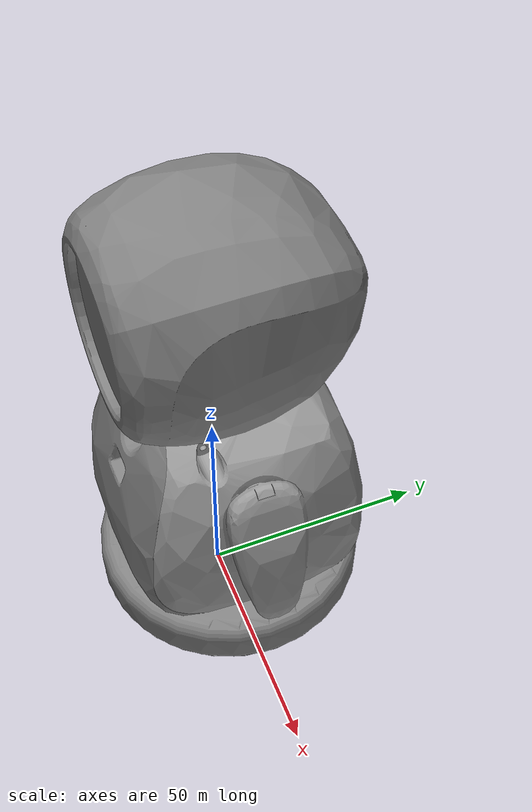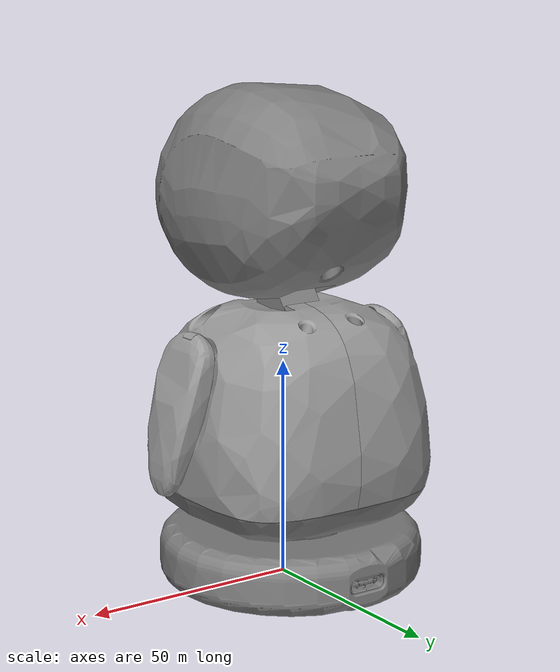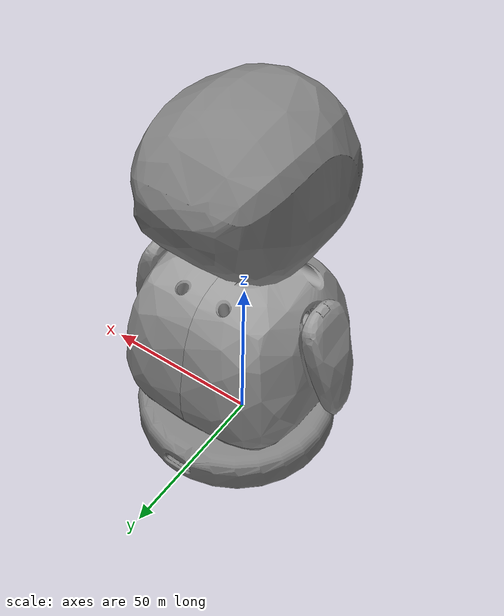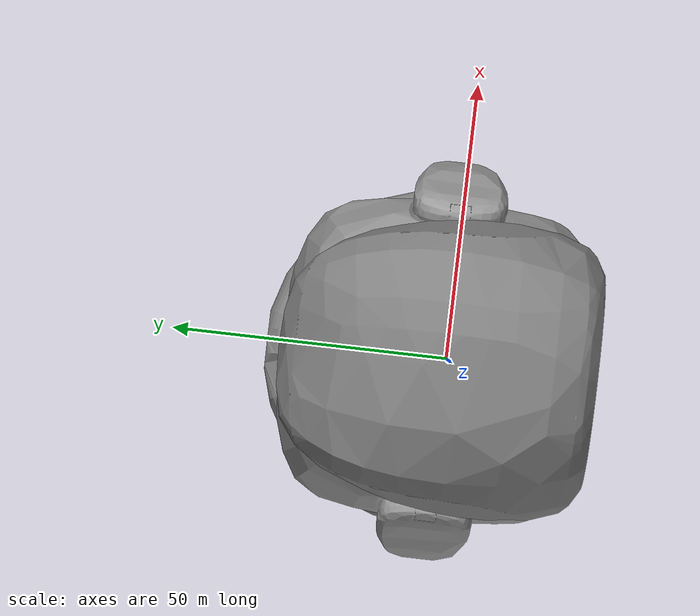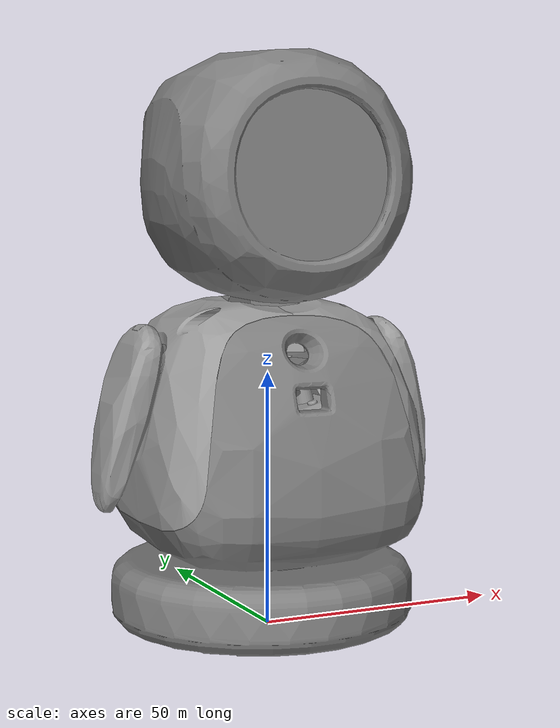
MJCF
<?xml version="1.0"?>
<mujoco model="electronbot tabletop scene">
  <include file="electronbot.xml"/>

  <visual>
    <headlight ambient="0.3 0.3 0.35" diffuse="0.6 0.6 0.65" specular="0.1 0.1 0.1"/>
    <map znear="0.001" zfar="100.0"/>
  </visual>

  <asset>
    <texture type="skybox" builtin="flat" rgb1="0.02 0.02 0.04" rgb2="0.02 0.02 0.04" width="16" height="16"/>
    <texture type="2d" name="groundplane" builtin="checker" mark="edge"
             rgb1="0.40 0.42 0.50" rgb2="0.05 0.07 0.14"
             markrgb="0.10 0.10 0.10" width="300" height="300"/>
    <material name="groundplane" texture="groundplane" texuniform="true" texrepeat="0.15 0.15" reflectance="0.03"/>
    <material name="table_wood" rgba="0.55 0.30 0.12 1" specular="0.3" shininess="0.4"/>
    <material name="obj_red" rgba="0.9 0.15 0.15 1" specular="0.5" shininess="0.5"/>
    <material name="obj_blue" rgba="0.15 0.25 0.9 1" specular="0.5" shininess="0.5"/>
    <material name="obj_green" rgba="0.15 0.8 0.25 1" specular="0.5" shininess="0.5"/>
    <material name="obj_yellow" rgba="0.9 0.8 0.15 1" specular="0.5" shininess="0.5"/>
  </asset>

  <worldbody>
    <light pos="0 -0.12 0.10" dir="0 1 -0.15" diffuse="1.8 1.8 1.8" specular="0.3 0.3 0.3" directional="true"/>
    <light pos="0.08 0 0.11" dir="-1 0 -0.2" diffuse="0.7 0.7 0.7" directional="true"/>
    <light pos="-0.08 0 0.11" dir="1 0 -0.2" diffuse="0.7 0.7 0.7" directional="true"/>

    <geom name="floor" size="1.0 1.0 0.01" type="plane" pos="0 0 0" material="groundplane"/>

    <body name="table" pos="0 0 0.0">
      <geom name="table_top" type="box" size="0.08 0.06 0.002" pos="0 0 0" material="table_wood"/>
      <geom name="leg1" type="cylinder" size="0.003 0.03" pos="-0.07 0.05 -0.032"/>
      <geom name="leg2" type="cylinder" size="0.003 0.03" pos="0.07 0.05 -0.032"/>
      <geom name="leg3" type="cylinder" size="0.003 0.03" pos="-0.07 -0.05 -0.032"/>
      <geom name="leg4" type="cylinder" size="0.003 0.03" pos="0.07 -0.05 -0.032"/>
    </body>

    <body name="obj_cube_red" pos="0.03 0.02 0.005">
      <joint name="obj_cube_red_free" type="free"/>
      <geom name="obj_cube_red_geom" type="box" size="0.004 0.004 0.004" mass="0.01" material="obj_red"/>
    </body>
    <body name="obj_cube_blue" pos="-0.03 0.01 0.005">
      <joint name="obj_cube_blue_free" type="free"/>
      <geom name="obj_cube_blue_geom" type="box" size="0.005 0.005 0.005" mass="0.015" material="obj_blue"/>
    </body>
    <body name="obj_cylinder_green" pos="0.01 -0.03 0.006">
      <joint name="obj_cylinder_green_free" type="free"/>
      <geom name="obj_cylinder_green_geom" type="cylinder" size="0.004 0.006" mass="0.012" material="obj_green"/>
    </body>
    <body name="obj_cube_yellow" pos="-0.01 -0.02 0.006">
      <joint name="obj_cube_yellow_free" type="free"/>
      <geom name="obj_cube_yellow_geom" type="box" size="0.003 0.003 0.006" mass="0.008" material="obj_yellow"/>
    </body>
  </worldbody>
</mujoco>
